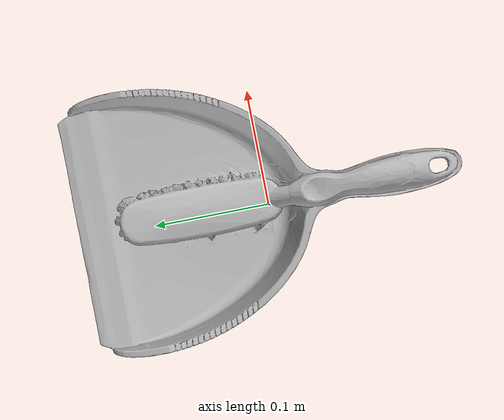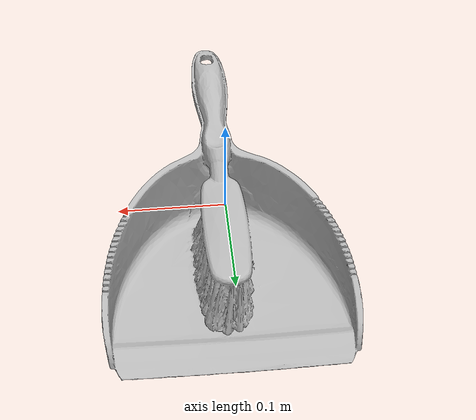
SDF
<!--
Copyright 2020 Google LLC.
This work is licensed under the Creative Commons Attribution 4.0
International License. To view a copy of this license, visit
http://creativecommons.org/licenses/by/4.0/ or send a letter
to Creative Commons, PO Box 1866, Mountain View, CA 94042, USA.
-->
<?xml version="1.0" ?>
<sdf version="1.6">
  <model name="Ocedar_Snap_On_Dust_Pan_And_Brush_1_ct">
    <link name="link_0">
      <visual name="visual">
        <geometry>
          <mesh>
            <uri>meshes/model.obj</uri>
          </mesh>
        </geometry>
      </visual>
      <collision name="collision_0">
        <geometry>
          <mesh>
            <uri>meshes/model.obj</uri>
          </mesh>
        </geometry>
      </collision>
    </link>
  </model>
</sdf>
